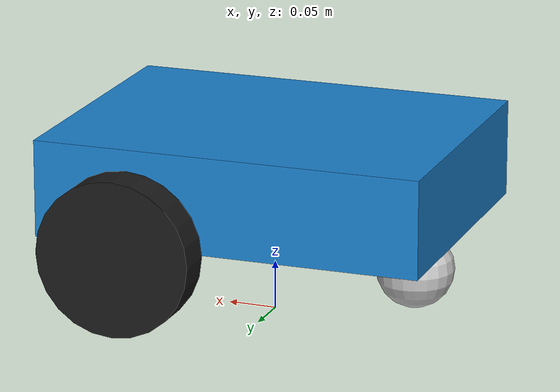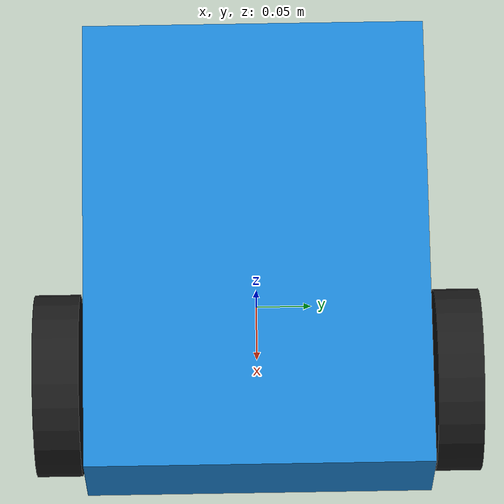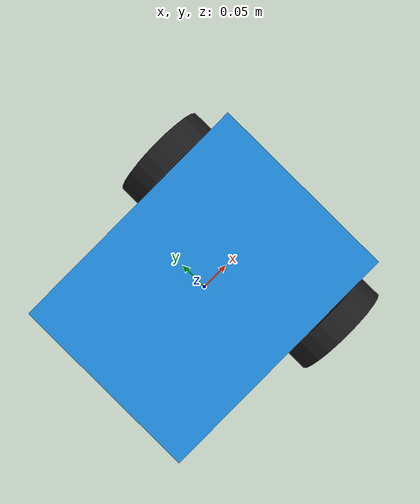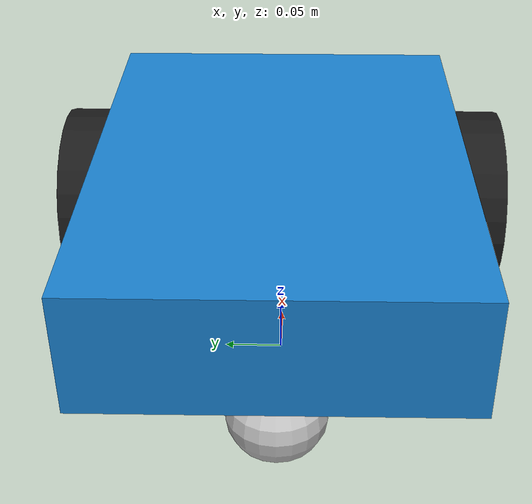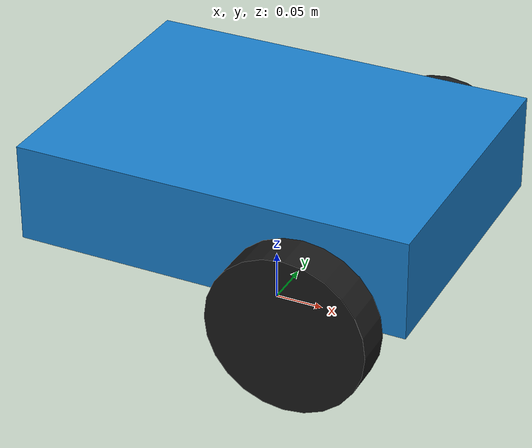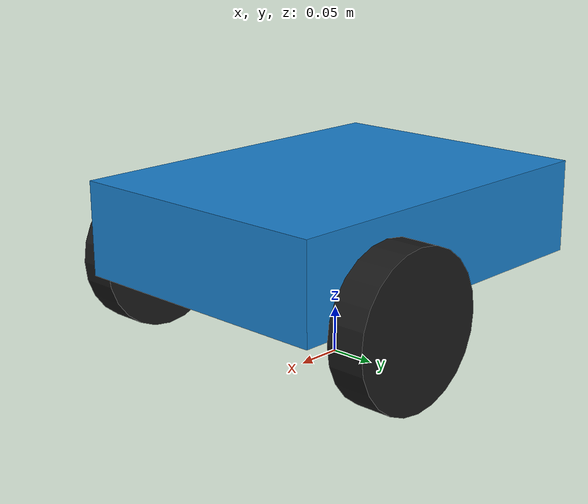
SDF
<?xml version="1.0" ?>
<sdf version="1.8">
  <model name="my_robot">
    <pose>0 0 0.1 0 0 0</pose>

    <!-- 1. 车身 (Chassis) -->
    <link name="chassis">
      <pose>0 0 0.05 0 0 0</pose>
      <inertial>
        <mass>2.0</mass>
        <pose>0 0 0 0 0 0</pose>
        <inertia>
          <ixx>0.01</ixx><ixy>0</ixy><ixz>0</ixz>
          <iyy>0.01</iyy><iyz>0</iyz><izz>0.01</izz>
        </inertia>
      </inertial>
      <visual name="chassis_visual">
        <geometry><box><size>0.4 0.3 0.1</size></box></geometry>
        <material>
          <ambient>0.1 0.5 0.8 1</ambient>
          <diffuse>0.1 0.5 0.8 1</diffuse>
        </material>
      </visual>
      <collision name="chassis_collision">
        <geometry><box><size>0.4 0.3 0.1</size></box></geometry>
      </collision>
    </link>

    <!-- 2. 左轮 (Left Wheel) -->
    <link name="left_wheel">
      <pose>0.1 0.175 0 -1.5707 0 0</pose>
      <inertial>
        <mass>0.5</mass>
        <inertia>
          <ixx>0.001</ixx><ixy>0</ixy><ixz>0</ixz>
          <iyy>0.001</iyy><iyz>0</iyz><izz>0.001</izz>
        </inertia>
      </inertial>
      <visual name="left_wheel_visual">
        <geometry><cylinder><radius>0.08</radius><length>0.04</length></cylinder></geometry>
        <material><ambient>0.1 0.1 0.1 1</ambient><diffuse>0.1 0.1 0.1 1</diffuse></material>
      </visual>
      <collision name="left_wheel_collision">
        <geometry><cylinder><radius>0.08</radius><length>0.04</length></cylinder></geometry>
      </collision>
    </link>

    <!-- 3. 右轮 (Right Wheel) -->
    <link name="right_wheel">
      <pose>0.1 -0.175 0 -1.5707 0 0</pose>
      <inertial>
        <mass>0.5</mass>
        <inertia>
          <ixx>0.001</ixx><ixy>0</ixy><ixz>0</ixz>
          <iyy>0.001</iyy><iyz>0</iyz><izz>0.001</izz>
        </inertia>
      </inertial>
      <visual name="right_wheel_visual">
        <geometry><cylinder><radius>0.08</radius><length>0.04</length></cylinder></geometry>
        <material><ambient>0.1 0.1 0.1 1</ambient><diffuse>0.1 0.1 0.1 1</diffuse></material>
      </visual>
      <collision name="right_wheel_collision">
        <geometry><cylinder><radius>0.08</radius><length>0.04</length></cylinder></geometry>
      </collision>
    </link>

    <!-- 4. 前支撑万向轮 (Caster Wheel) -->
    <link name="caster">
      <pose>-0.15 0 -0.04 0 0 0</pose>
      <inertial>
        <mass>0.2</mass>
        <inertia>
          <ixx>0.0001</ixx><ixy>0</ixy><ixz>0</ixz>
          <iyy>0.0001</iyy><iyz>0</iyz><izz>0.0001</izz>
        </inertia>
      </inertial>
      <visual name="caster_visual">
        <geometry><sphere><radius>0.04</radius></sphere></geometry>
        <material><ambient>0.8 0.8 0.8 1</ambient><diffuse>0.8 0.8 0.8 1</diffuse></material>
      </visual>
      <collision name="caster_collision">
        <geometry><sphere><radius>0.04</radius></sphere></geometry>
        <surface><friction><ode><mu>0.0</mu><mu2>0.0</mu2></ode></friction></surface>
      </collision>
    </link>

    <!-- 关节连接 -->
    <joint name="left_wheel_joint" type="revolute">
      <parent>chassis</parent>
      <child>left_wheel</child>
      <axis><xyz>0 0 1</xyz></axis>
    </joint>
    <joint name="right_wheel_joint" type="revolute">
      <parent>chassis</parent>
      <child>right_wheel</child>
      <axis><xyz>0 0 1</xyz></axis>
    </joint>
    <joint name="caster_joint" type="fixed">
      <parent>chassis</parent>
      <child>caster</child>
    </joint>

    <!-- 差速驱动插件 (Diff Drive Plugin) -->
    <plugin filename="gz-sim-diff-drive-system" name="gz::sim::systems::DiffDrive">
      <left_joint>left_wheel_joint</left_joint>
      <right_joint>right_wheel_joint</right_joint>
      <wheel_separation>0.35</wheel_separation>
      <wheel_radius>0.08</wheel_radius>
      <odom_publish_frequency>30</odom_publish_frequency>
      <topic>cmd_vel</topic>
      <odom_topic>odom</odom_topic>
      <frame_id>odom</frame_id>
      <child_frame_id>chassis</child_frame_id>
    </plugin>

  </model>
</sdf>
